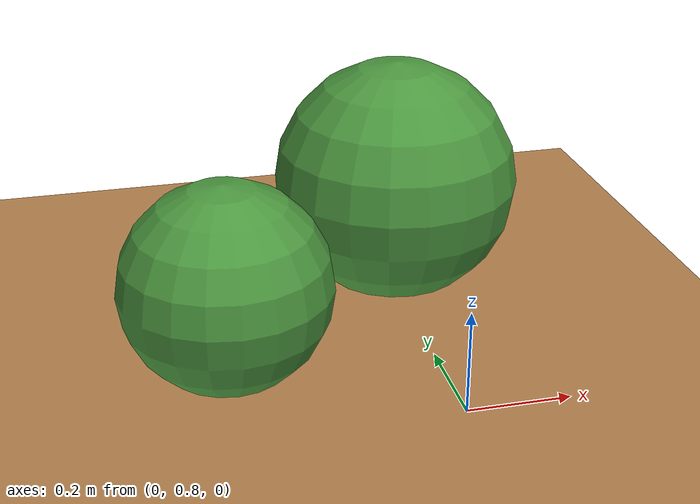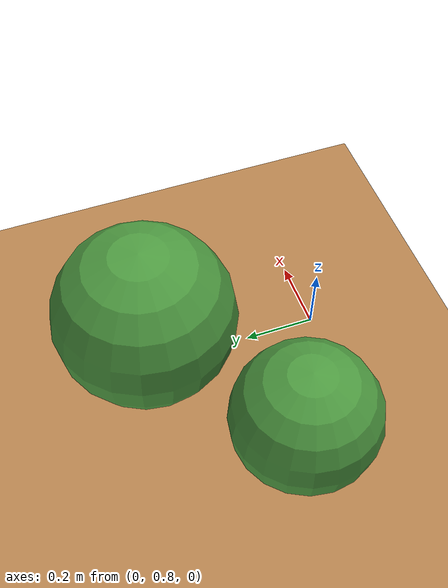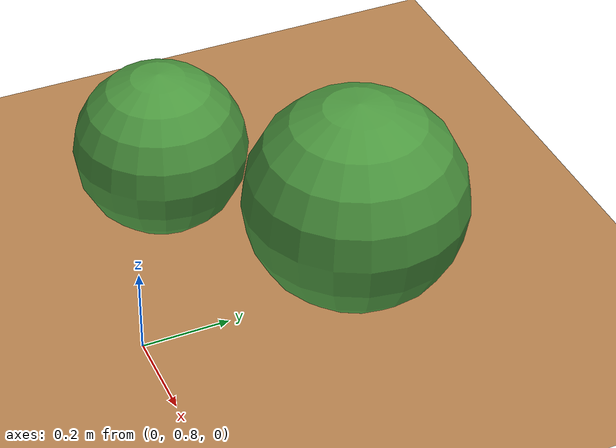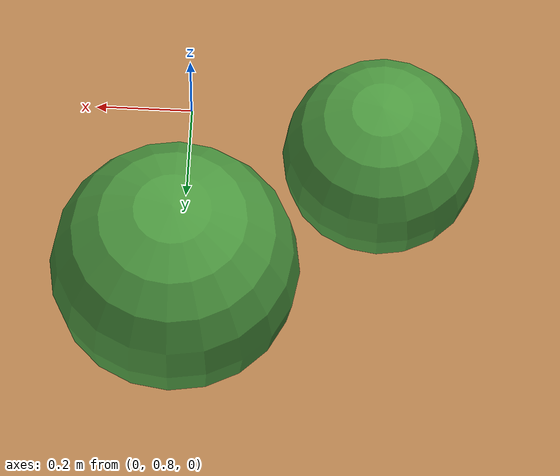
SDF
<?xml version="1.0" ?>
<sdf version="1.5">
  <world name="default">
    <scene>
      <sky>
        <clouds>
          <speed>12</speed>
        </clouds>
      </sky>
    </scene>
    <!-- A global light source -->
    <include>
      <uri>model://sun</uri>
    </include>
    <!-- A ground plane -->
    <model name="ground_plane">
      <static>true</static>
      <link name="link">
        <collision name="collision">
          <geometry>
            <plane>
              <normal>0 0 1</normal>
              <size>100 100</size>
            </plane>
          </geometry>
          <surface>
            <friction>
              <ode>
                <mu>100</mu>
                <mu2>50</mu2>
              </ode>
            </friction>
          </surface>
        </collision>
        <visual name="visual">
          <cast_shadows>false</cast_shadows>
          <geometry>
            <plane>
              <normal>0 0 1</normal>
              <size>100 100</size>
            </plane>
          </geometry>
          <material>
            <script>
              <name>Gazebo/Wood</name>
            </script>
          </material>
        </visual>
      </link>
    </model>
    <!-- A sphere -->
    <model name="sphere1">
      <pose>0 1.3 0.25 0 0 0</pose>
      <link name="sphere_body">
        <inertial>
          <inertia>
            <ixx>1</ixx>
            <ixy>0</ixy>
            <ixz>0</ixz>
            <iyy>1</iyy>
            <iyz>0</iyz>
            <izz>1</izz>
          </inertia>
          <mass>1.0</mass>
        </inertial>
        <collision name="geom">
          <geometry>
            <sphere>
              <radius>0.25</radius>
            </sphere>
          </geometry>
        </collision>
        <visual name="visual">
          <geometry>
            <sphere>
              <radius>0.25</radius>
            </sphere>
          </geometry>
          <material>
            <script>
              <name>Gazebo/Grass</name>
            </script>
          </material>
        </visual>
      </link>
      <static>true</static>
    </model>
    <model name="sphere2">
      <pose>-0.4 1 0.2 0 0 0</pose>
      <link name="sphere_body">
        <inertial>
          <inertia>
            <ixx>1</ixx>
            <ixy>0</ixy>
            <ixz>0</ixz>
            <iyy>1</iyy>
            <iyz>0</iyz>
            <izz>1</izz>
          </inertia>
          <mass>1.0</mass>
        </inertial>
        <collision name="geom">
          <geometry>
            <sphere>
              <radius>0.2</radius>
            </sphere>
          </geometry>
        </collision>
        <visual name="visual">
          <geometry>
            <sphere>
              <radius>0.2</radius>
            </sphere>
          </geometry>
          <material>
            <script>
              <name>Gazebo/Grass</name>
            </script>
          </material>
        </visual>
      </link>
      <static>true</static>
    </model>
  </world>
</sdf>
